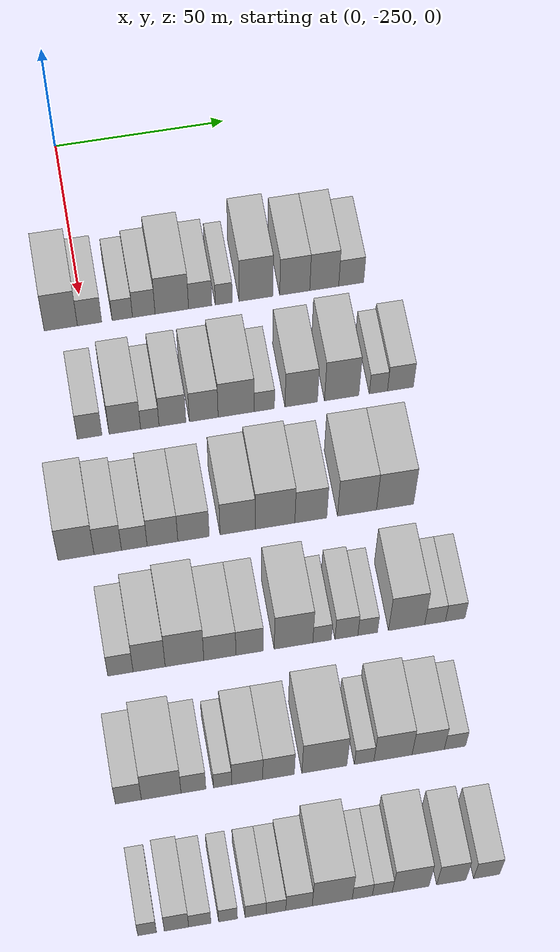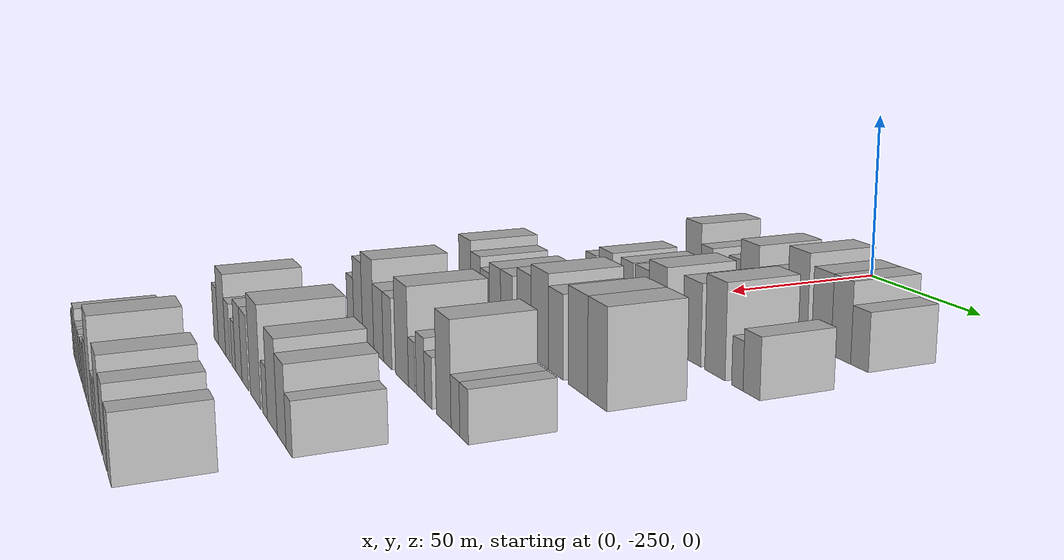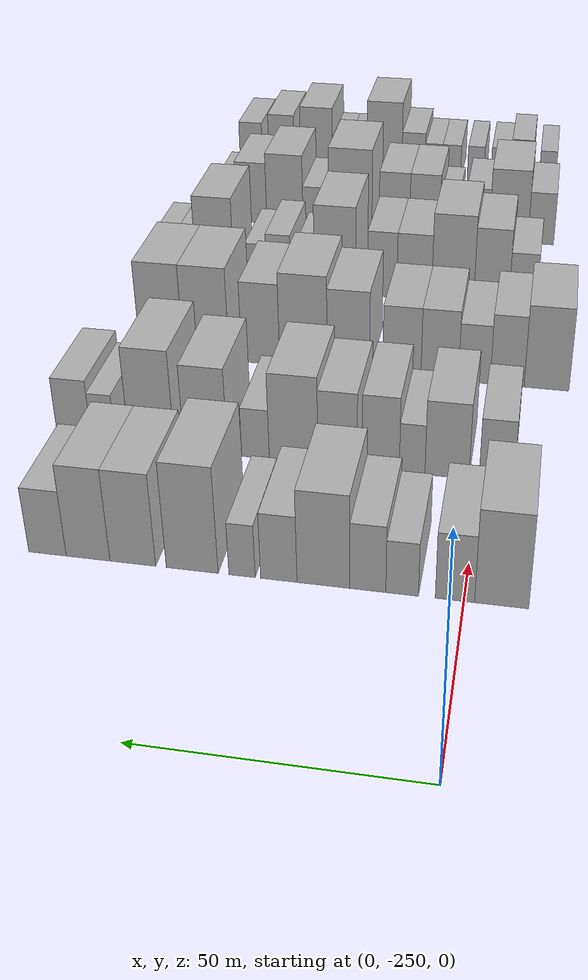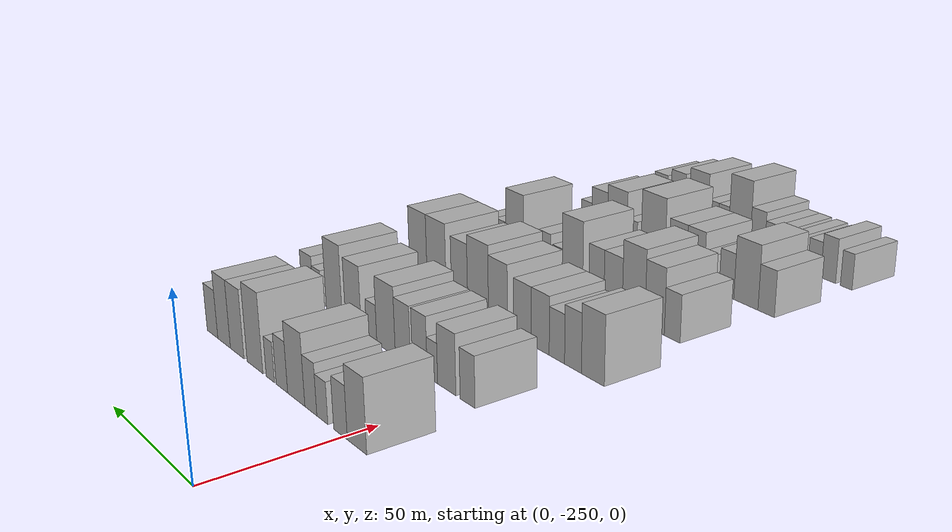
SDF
<sdf version="1.6">
 <world name="default">
  <model name="building_34">
   <static>1</static>
   <pose>50.0000 -256.5967 0 0.000000 0.000000 0.000000</pose>
   <link name="link">
    <pose>0 0 10.50 0 0 0</pose>
    <collision name="collision"><geometry><box><size>20.0000 9.5131 21.0000</size></box></geometry></collision>
    <visual name="visual">
     <cast_shadows>0</cast_shadows>
     <geometry><box><size>20.0000 9.5131 21.0000</size></box></geometry>
     <material>
      <script>
       <uri>model://HANNAS_wall/materials/scripts</uri>
       <uri>model://HANNAS_wall/materials/textures</uri>
       <name>vrc/HANNAS_wall</name>
      </script>
     </material>
    </visual>
   </link>
  </model>
  <model name="building_35">
   <static>1</static>
   <pose>50.0000 -248.3557 0 0.000000 0.000000 0.000000</pose>
   <link name="link">
    <pose>0 0 7.50 0 0 0</pose>
    <collision name="collision"><geometry><box><size>20.0000 6.9689 15.0000</size></box></geometry></collision>
    <visual name="visual">
     <cast_shadows>0</cast_shadows>
     <geometry><box><size>20.0000 6.9689 15.0000</size></box></geometry>
     <material>
      <script>
       <uri>model://HANNAS_wall/materials/scripts</uri>
       <uri>model://HANNAS_wall/materials/textures</uri>
       <name>vrc/HANNAS_wall</name>
      </script>
     </material>
    </visual>
   </link>
  </model>
  <model name="building_36">
   <static>1</static>
   <pose>50.0000 -238.9453 0 0.000000 0.000000 0.000000</pose>
   <link name="link">
    <pose>0 0 6.00 0 0 0</pose>
    <collision name="collision"><geometry><box><size>20.0000 5.8519 12.0000</size></box></geometry></collision>
    <visual name="visual">
     <cast_shadows>0</cast_shadows>
     <geometry><box><size>20.0000 5.8519 12.0000</size></box></geometry>
     <material>
      <script>
       <uri>model://HANNAS_wall/materials/scripts</uri>
       <uri>model://HANNAS_wall/materials/textures</uri>
       <name>vrc/HANNAS_wall</name>
      </script>
     </material>
    </visual>
   </link>
  </model>
  <model name="building_37">
   <static>1</static>
   <pose>50.0000 -232.7701 0 0.000000 0.000000 0.000000</pose>
   <link name="link">
    <pose>0 0 7.50 0 0 0</pose>
    <collision name="collision"><geometry><box><size>20.0000 6.4985 15.0000</size></box></geometry></collision>
    <visual name="visual">
     <cast_shadows>0</cast_shadows>
     <geometry><box><size>20.0000 6.4985 15.0000</size></box></geometry>
     <material>
      <script>
       <uri>model://HANNAS_wall/materials/scripts</uri>
       <uri>model://HANNAS_wall/materials/textures</uri>
       <name>vrc/HANNAS_wall</name>
      </script>
     </material>
    </visual>
   </link>
  </model>
  <model name="building_38">
   <static>1</static>
   <pose>50.0000 -224.6949 0 0.000000 0.000000 0.000000</pose>
   <link name="link">
    <pose>0 0 10.50 0 0 0</pose>
    <collision name="collision"><geometry><box><size>20.0000 9.6519 21.0000</size></box></geometry></collision>
    <visual name="visual">
     <cast_shadows>0</cast_shadows>
     <geometry><box><size>20.0000 9.6519 21.0000</size></box></geometry>
     <material>
      <script>
       <uri>model://HANNAS_wall/materials/scripts</uri>
       <uri>model://HANNAS_wall/materials/textures</uri>
       <name>vrc/HANNAS_wall</name>
      </script>
     </material>
    </visual>
   </link>
  </model>
  <model name="building_39">
   <static>1</static>
   <pose>50.0000 -216.5163 0 0.000000 0.000000 0.000000</pose>
   <link name="link">
    <pose>0 0 7.50 0 0 0</pose>
    <collision name="collision"><geometry><box><size>20.0000 6.7052 15.0000</size></box></geometry></collision>
    <visual name="visual">
     <cast_shadows>0</cast_shadows>
     <geometry><box><size>20.0000 6.7052 15.0000</size></box></geometry>
     <material>
      <script>
       <uri>model://HANNAS_wall/materials/scripts</uri>
       <uri>model://HANNAS_wall/materials/textures</uri>
       <name>vrc/HANNAS_wall</name>
      </script>
     </material>
    </visual>
   </link>
  </model>
  <model name="building_40">
   <static>1</static>
   <pose>50.0000 -209.7153 0 0.000000 0.000000 0.000000</pose>
   <link name="link">
    <pose>0 0 6.00 0 0 0</pose>
    <collision name="collision"><geometry><box><size>20.0000 4.8969 12.0000</size></box></geometry></collision>
    <visual name="visual">
     <cast_shadows>0</cast_shadows>
     <geometry><box><size>20.0000 4.8969 12.0000</size></box></geometry>
     <material>
      <script>
       <uri>model://HANNAS_wall/materials/scripts</uri>
       <uri>model://HANNAS_wall/materials/textures</uri>
       <name>vrc/HANNAS_wall</name>
      </script>
     </material>
    </visual>
   </link>
  </model>
  <model name="building_41">
   <static>1</static>
   <pose>50.0000 -200.3876 0 0.000000 0.000000 0.000000</pose>
   <link name="link">
    <pose>0 0 12.00 0 0 0</pose>
    <collision name="collision"><geometry><box><size>20.0000 9.7583 24.0000</size></box></geometry></collision>
    <visual name="visual">
     <cast_shadows>0</cast_shadows>
     <geometry><box><size>20.0000 9.7583 24.0000</size></box></geometry>
     <material>
      <script>
       <uri>model://HANNAS_wall/materials/scripts</uri>
       <uri>model://HANNAS_wall/materials/textures</uri>
       <name>vrc/HANNAS_wall</name>
      </script>
     </material>
    </visual>
   </link>
  </model>
  <model name="building_42">
   <static>1</static>
   <pose>50.0000 -189.1490 0 0.000000 0.000000 0.000000</pose>
   <link name="link">
    <pose>0 0 10.50 0 0 0</pose>
    <collision name="collision"><geometry><box><size>20.0000 8.7190 21.0000</size></box></geometry></collision>
    <visual name="visual">
     <cast_shadows>0</cast_shadows>
     <geometry><box><size>20.0000 8.7190 21.0000</size></box></geometry>
     <material>
      <script>
       <uri>model://HANNAS_wall/materials/scripts</uri>
       <uri>model://HANNAS_wall/materials/textures</uri>
       <name>vrc/HANNAS_wall</name>
      </script>
     </material>
    </visual>
   </link>
  </model>
  <model name="building_43">
   <static>1</static>
   <pose>50.0000 -180.5831 0 0.000000 0.000000 0.000000</pose>
   <link name="link">
    <pose>0 0 10.50 0 0 0</pose>
    <collision name="collision"><geometry><box><size>20.0000 8.4128 21.0000</size></box></geometry></collision>
    <visual name="visual">
     <cast_shadows>0</cast_shadows>
     <geometry><box><size>20.0000 8.4128 21.0000</size></box></geometry>
     <material>
      <script>
       <uri>model://HANNAS_wall/materials/scripts</uri>
       <uri>model://HANNAS_wall/materials/textures</uri>
       <name>vrc/HANNAS_wall</name>
      </script>
     </material>
    </visual>
   </link>
  </model>
  <model name="building_44">
   <static>1</static>
   <pose>50.0000 -172.7457 0 0.000000 0.000000 0.000000</pose>
   <link name="link">
    <pose>0 0 7.50 0 0 0</pose>
    <collision name="collision"><geometry><box><size>20.0000 7.2621 15.0000</size></box></geometry></collision>
    <visual name="visual">
     <cast_shadows>0</cast_shadows>
     <geometry><box><size>20.0000 7.2621 15.0000</size></box></geometry>
     <material>
      <script>
       <uri>model://HANNAS_wall/materials/scripts</uri>
       <uri>model://HANNAS_wall/materials/textures</uri>
       <name>vrc/HANNAS_wall</name>
      </script>
     </material>
    </visual>
   </link>
  </model>
  <model name="building_165">
   <static>1</static>
   <pose>85.0000 -253.3240 0 0.000000 0.000000 0.000000</pose>
   <link name="link">
    <pose>0 0 7.50 0 0 0</pose>
    <collision name="collision"><geometry><box><size>20.0000 6.9586 15.0000</size></box></geometry></collision>
    <visual name="visual">
     <cast_shadows>0</cast_shadows>
     <geometry><box><size>20.0000 6.9586 15.0000</size></box></geometry>
     <material>
      <script>
       <uri>model://HANNAS_wall/materials/scripts</uri>
       <uri>model://HANNAS_wall/materials/textures</uri>
       <name>vrc/HANNAS_wall</name>
      </script>
     </material>
    </visual>
   </link>
  </model>
  <model name="building_166">
   <static>1</static>
   <pose>85.0000 -243.4101 0 0.000000 0.000000 0.000000</pose>
   <link name="link">
    <pose>0 0 9.00 0 0 0</pose>
    <collision name="collision"><geometry><box><size>20.0000 8.8692 18.0000</size></box></geometry></collision>
    <visual name="visual">
     <cast_shadows>0</cast_shadows>
     <geometry><box><size>20.0000 8.8692 18.0000</size></box></geometry>
     <material>
      <script>
       <uri>model://HANNAS_wall/materials/scripts</uri>
       <uri>model://HANNAS_wall/materials/textures</uri>
       <name>vrc/HANNAS_wall</name>
      </script>
     </material>
    </visual>
   </link>
  </model>
  <model name="building_167">
   <static>1</static>
   <pose>85.0000 -236.3796 0 0.000000 0.000000 0.000000</pose>
   <link name="link">
    <pose>0 0 6.00 0 0 0</pose>
    <collision name="collision"><geometry><box><size>20.0000 5.1918 12.0000</size></box></geometry></collision>
    <visual name="visual">
     <cast_shadows>0</cast_shadows>
     <geometry><box><size>20.0000 5.1918 12.0000</size></box></geometry>
     <material>
      <script>
       <uri>model://HANNAS_wall/materials/scripts</uri>
       <uri>model://HANNAS_wall/materials/textures</uri>
       <name>vrc/HANNAS_wall</name>
      </script>
     </material>
    </visual>
   </link>
  </model>
  <model name="building_168">
   <static>1</static>
   <pose>85.0000 -230.0042 0 0.000000 0.000000 0.000000</pose>
   <link name="link">
    <pose>0 0 9.00 0 0 0</pose>
    <collision name="collision"><geometry><box><size>20.0000 7.5591 18.0000</size></box></geometry></collision>
    <visual name="visual">
     <cast_shadows>0</cast_shadows>
     <geometry><box><size>20.0000 7.5591 18.0000</size></box></geometry>
     <material>
      <script>
       <uri>model://HANNAS_wall/materials/scripts</uri>
       <uri>model://HANNAS_wall/materials/textures</uri>
       <name>vrc/HANNAS_wall</name>
      </script>
     </material>
    </visual>
   </link>
  </model>
  <model name="building_169">
   <static>1</static>
   <pose>85.0000 -221.1715 0 0.000000 0.000000 0.000000</pose>
   <link name="link">
    <pose>0 0 9.00 0 0 0</pose>
    <collision name="collision"><geometry><box><size>20.0000 8.1064 18.0000</size></box></geometry></collision>
    <visual name="visual">
     <cast_shadows>0</cast_shadows>
     <geometry><box><size>20.0000 8.1064 18.0000</size></box></geometry>
     <material>
      <script>
       <uri>model://HANNAS_wall/materials/scripts</uri>
       <uri>model://HANNAS_wall/materials/textures</uri>
       <name>vrc/HANNAS_wall</name>
      </script>
     </material>
    </visual>
   </link>
  </model>
  <model name="building_170">
   <static>1</static>
   <pose>85.0000 -212.0409 0 0.000000 0.000000 0.000000</pose>
   <link name="link">
    <pose>0 0 10.50 0 0 0</pose>
    <collision name="collision"><geometry><box><size>20.0000 10.1546 21.0000</size></box></geometry></collision>
    <visual name="visual">
     <cast_shadows>0</cast_shadows>
     <geometry><box><size>20.0000 10.1546 21.0000</size></box></geometry>
     <material>
      <script>
       <uri>model://HANNAS_wall/materials/scripts</uri>
       <uri>model://HANNAS_wall/materials/textures</uri>
       <name>vrc/HANNAS_wall</name>
      </script>
     </material>
    </visual>
   </link>
  </model>
  <model name="building_171">
   <static>1</static>
   <pose>85.0000 -204.0703 0 0.000000 0.000000 0.000000</pose>
   <link name="link">
    <pose>0 0 6.00 0 0 0</pose>
    <collision name="collision"><geometry><box><size>20.0000 5.7868 12.0000</size></box></geometry></collision>
    <visual name="visual">
     <cast_shadows>0</cast_shadows>
     <geometry><box><size>20.0000 5.7868 12.0000</size></box></geometry>
     <material>
      <script>
       <uri>model://HANNAS_wall/materials/scripts</uri>
       <uri>model://HANNAS_wall/materials/textures</uri>
       <name>vrc/HANNAS_wall</name>
      </script>
     </material>
    </visual>
   </link>
  </model>
  <model name="building_172">
   <static>1</static>
   <pose>85.0000 -193.5579 0 0.000000 0.000000 0.000000</pose>
   <link name="link">
    <pose>0 0 10.50 0 0 0</pose>
    <collision name="collision"><geometry><box><size>20.0000 9.2380 21.0000</size></box></geometry></collision>
    <visual name="visual">
     <cast_shadows>0</cast_shadows>
     <geometry><box><size>20.0000 9.2380 21.0000</size></box></geometry>
     <material>
      <script>
       <uri>model://HANNAS_wall/materials/scripts</uri>
       <uri>model://HANNAS_wall/materials/textures</uri>
       <name>vrc/HANNAS_wall</name>
      </script>
     </material>
    </visual>
   </link>
  </model>
  <model name="building_173">
   <static>1</static>
   <pose>85.0000 -182.0519 0 0.000000 0.000000 0.000000</pose>
   <link name="link">
    <pose>0 0 12.00 0 0 0</pose>
    <collision name="collision"><geometry><box><size>20.0000 9.7738 24.0000</size></box></geometry></collision>
    <visual name="visual">
     <cast_shadows>0</cast_shadows>
     <geometry><box><size>20.0000 9.7738 24.0000</size></box></geometry>
     <material>
      <script>
       <uri>model://HANNAS_wall/materials/scripts</uri>
       <uri>model://HANNAS_wall/materials/textures</uri>
       <name>vrc/HANNAS_wall</name>
      </script>
     </material>
    </visual>
   </link>
  </model>
  <model name="building_174">
   <static>1</static>
   <pose>85.0000 -171.5740 0 0.000000 0.000000 0.000000</pose>
   <link name="link">
    <pose>0 0 6.00 0 0 0</pose>
    <collision name="collision"><geometry><box><size>20.0000 5.1820 12.0000</size></box></geometry></collision>
    <visual name="visual">
     <cast_shadows>0</cast_shadows>
     <geometry><box><size>20.0000 5.1820 12.0000</size></box></geometry>
     <material>
      <script>
       <uri>model://HANNAS_wall/materials/scripts</uri>
       <uri>model://HANNAS_wall/materials/textures</uri>
       <name>vrc/HANNAS_wall</name>
      </script>
     </material>
    </visual>
   </link>
  </model>
  <model name="building_175">
   <static>1</static>
   <pose>85.0000 -165.2852 0 0.000000 0.000000 0.000000</pose>
   <link name="link">
    <pose>0 0 7.50 0 0 0</pose>
    <collision name="collision"><geometry><box><size>20.0000 7.3956 15.0000</size></box></geometry></collision>
    <visual name="visual">
     <cast_shadows>0</cast_shadows>
     <geometry><box><size>20.0000 7.3956 15.0000</size></box></geometry>
     <material>
      <script>
       <uri>model://HANNAS_wall/materials/scripts</uri>
       <uri>model://HANNAS_wall/materials/textures</uri>
       <name>vrc/HANNAS_wall</name>
      </script>
     </material>
    </visual>
   </link>
  </model>
  <model name="building_291">
   <static>1</static>
   <pose>120.0000 -262.0202 0 0.000000 0.000000 0.000000</pose>
   <link name="link">
    <pose>0 0 10.50 0 0 0</pose>
    <collision name="collision"><geometry><box><size>20.0000 9.8946 21.0000</size></box></geometry></collision>
    <visual name="visual">
     <cast_shadows>0</cast_shadows>
     <geometry><box><size>20.0000 9.8946 21.0000</size></box></geometry>
     <material>
      <script>
       <uri>model://HANNAS_wall/materials/scripts</uri>
       <uri>model://HANNAS_wall/materials/textures</uri>
       <name>vrc/HANNAS_wall</name>
      </script>
     </material>
    </visual>
   </link>
  </model>
  <model name="building_292">
   <static>1</static>
   <pose>120.0000 -253.3083 0 0.000000 0.000000 0.000000</pose>
   <link name="link">
    <pose>0 0 9.00 0 0 0</pose>
    <collision name="collision"><geometry><box><size>20.0000 7.5290 18.0000</size></box></geometry></collision>
    <visual name="visual">
     <cast_shadows>0</cast_shadows>
     <geometry><box><size>20.0000 7.5290 18.0000</size></box></geometry>
     <material>
      <script>
       <uri>model://HANNAS_wall/materials/scripts</uri>
       <uri>model://HANNAS_wall/materials/textures</uri>
       <name>vrc/HANNAS_wall</name>
      </script>
     </material>
    </visual>
   </link>
  </model>
  <model name="building_293">
   <static>1</static>
   <pose>120.0000 -246.0073 0 0.000000 0.000000 0.000000</pose>
   <link name="link">
    <pose>0 0 7.50 0 0 0</pose>
    <collision name="collision"><geometry><box><size>20.0000 7.0731 15.0000</size></box></geometry></collision>
    <visual name="visual">
     <cast_shadows>0</cast_shadows>
     <geometry><box><size>20.0000 7.0731 15.0000</size></box></geometry>
     <material>
      <script>
       <uri>model://HANNAS_wall/materials/scripts</uri>
       <uri>model://HANNAS_wall/materials/textures</uri>
       <name>vrc/HANNAS_wall</name>
      </script>
     </material>
    </visual>
   </link>
  </model>
  <model name="building_294">
   <static>1</static>
   <pose>120.0000 -238.2392 0 0.000000 0.000000 0.000000</pose>
   <link name="link">
    <pose>0 0 9.00 0 0 0</pose>
    <collision name="collision"><geometry><box><size>20.0000 8.4631 18.0000</size></box></geometry></collision>
    <visual name="visual">
     <cast_shadows>0</cast_shadows>
     <geometry><box><size>20.0000 8.4631 18.0000</size></box></geometry>
     <material>
      <script>
       <uri>model://HANNAS_wall/materials/scripts</uri>
       <uri>model://HANNAS_wall/materials/textures</uri>
       <name>vrc/HANNAS_wall</name>
      </script>
     </material>
    </visual>
   </link>
  </model>
  <model name="building_295">
   <static>1</static>
   <pose>120.0000 -229.6831 0 0.000000 0.000000 0.000000</pose>
   <link name="link">
    <pose>0 0 9.00 0 0 0</pose>
    <collision name="collision"><geometry><box><size>20.0000 8.6493 18.0000</size></box></geometry></collision>
    <visual name="visual">
     <cast_shadows>0</cast_shadows>
     <geometry><box><size>20.0000 8.6493 18.0000</size></box></geometry>
     <material>
      <script>
       <uri>model://HANNAS_wall/materials/scripts</uri>
       <uri>model://HANNAS_wall/materials/textures</uri>
       <name>vrc/HANNAS_wall</name>
      </script>
     </material>
    </visual>
   </link>
  </model>
  <model name="building_296">
   <static>1</static>
   <pose>120.0000 -217.5014 0 0.000000 0.000000 0.000000</pose>
   <link name="link">
    <pose>0 0 10.50 0 0 0</pose>
    <collision name="collision"><geometry><box><size>20.0000 9.7141 21.0000</size></box></geometry></collision>
    <visual name="visual">
     <cast_shadows>0</cast_shadows>
     <geometry><box><size>20.0000 9.7141 21.0000</size></box></geometry>
     <material>
      <script>
       <uri>model://HANNAS_wall/materials/scripts</uri>
       <uri>model://HANNAS_wall/materials/textures</uri>
       <name>vrc/HANNAS_wall</name>
      </script>
     </material>
    </visual>
   </link>
  </model>
  <model name="building_297">
   <static>1</static>
   <pose>120.0000 -207.1283 0 0.000000 0.000000 0.000000</pose>
   <link name="link">
    <pose>0 0 12.00 0 0 0</pose>
    <collision name="collision"><geometry><box><size>20.0000 11.0322 24.0000</size></box></geometry></collision>
    <visual name="visual">
     <cast_shadows>0</cast_shadows>
     <geometry><box><size>20.0000 11.0322 24.0000</size></box></geometry>
     <material>
      <script>
       <uri>model://HANNAS_wall/materials/scripts</uri>
       <uri>model://HANNAS_wall/materials/textures</uri>
       <name>vrc/HANNAS_wall</name>
      </script>
     </material>
    </visual>
   </link>
  </model>
  <model name="building_298">
   <static>1</static>
   <pose>120.0000 -197.1749 0 0.000000 0.000000 0.000000</pose>
   <link name="link">
    <pose>0 0 10.50 0 0 0</pose>
    <collision name="collision"><geometry><box><size>20.0000 8.8746 21.0000</size></box></geometry></collision>
    <visual name="visual">
     <cast_shadows>0</cast_shadows>
     <geometry><box><size>20.0000 8.8746 21.0000</size></box></geometry>
     <material>
      <script>
       <uri>model://HANNAS_wall/materials/scripts</uri>
       <uri>model://HANNAS_wall/materials/textures</uri>
       <name>vrc/HANNAS_wall</name>
      </script>
     </material>
    </visual>
   </link>
  </model>
  <model name="building_299">
   <static>1</static>
   <pose>120.0000 -184.3029 0 0.000000 0.000000 0.000000</pose>
   <link name="link">
    <pose>0 0 12.00 0 0 0</pose>
    <collision name="collision"><geometry><box><size>20.0000 10.8693 24.0000</size></box></geometry></collision>
    <visual name="visual">
     <cast_shadows>0</cast_shadows>
     <geometry><box><size>20.0000 10.8693 24.0000</size></box></geometry>
     <material>
      <script>
       <uri>model://HANNAS_wall/materials/scripts</uri>
       <uri>model://HANNAS_wall/materials/textures</uri>
       <name>vrc/HANNAS_wall</name>
      </script>
     </material>
    </visual>
   </link>
  </model>
  <model name="building_300">
   <static>1</static>
   <pose>120.0000 -173.6864 0 0.000000 0.000000 0.000000</pose>
   <link name="link">
    <pose>0 0 12.00 0 0 0</pose>
    <collision name="collision"><geometry><box><size>20.0000 10.3636 24.0000</size></box></geometry></collision>
    <visual name="visual">
     <cast_shadows>0</cast_shadows>
     <geometry><box><size>20.0000 10.3636 24.0000</size></box></geometry>
     <material>
      <script>
       <uri>model://HANNAS_wall/materials/scripts</uri>
       <uri>model://HANNAS_wall/materials/textures</uri>
       <name>vrc/HANNAS_wall</name>
      </script>
     </material>
    </visual>
   </link>
  </model>
  <model name="building_418">
   <static>1</static>
   <pose>155.0000 -254.9989 0 0.000000 0.000000 0.000000</pose>
   <link name="link">
    <pose>0 0 7.50 0 0 0</pose>
    <collision name="collision"><geometry><box><size>20.0000 6.8194 15.0000</size></box></geometry></collision>
    <visual name="visual">
     <cast_shadows>0</cast_shadows>
     <geometry><box><size>20.0000 6.8194 15.0000</size></box></geometry>
     <material>
      <script>
       <uri>model://HANNAS_wall/materials/scripts</uri>
       <uri>model://HANNAS_wall/materials/textures</uri>
       <name>vrc/HANNAS_wall</name>
      </script>
     </material>
    </visual>
   </link>
  </model>
  <model name="building_419">
   <static>1</static>
   <pose>155.0000 -247.2697 0 0.000000 0.000000 0.000000</pose>
   <link name="link">
    <pose>0 0 10.50 0 0 0</pose>
    <collision name="collision"><geometry><box><size>20.0000 8.6390 21.0000</size></box></geometry></collision>
    <visual name="visual">
     <cast_shadows>0</cast_shadows>
     <geometry><box><size>20.0000 8.6390 21.0000</size></box></geometry>
     <material>
      <script>
       <uri>model://HANNAS_wall/materials/scripts</uri>
       <uri>model://HANNAS_wall/materials/textures</uri>
       <name>vrc/HANNAS_wall</name>
      </script>
     </material>
    </visual>
   </link>
  </model>
  <model name="building_420">
   <static>1</static>
   <pose>155.0000 -237.7359 0 0.000000 0.000000 0.000000</pose>
   <link name="link">
    <pose>0 0 12.00 0 0 0</pose>
    <collision name="collision"><geometry><box><size>20.0000 10.4285 24.0000</size></box></geometry></collision>
    <visual name="visual">
     <cast_shadows>0</cast_shadows>
     <geometry><box><size>20.0000 10.4285 24.0000</size></box></geometry>
     <material>
      <script>
       <uri>model://HANNAS_wall/materials/scripts</uri>
       <uri>model://HANNAS_wall/materials/textures</uri>
       <name>vrc/HANNAS_wall</name>
      </script>
     </material>
    </visual>
   </link>
  </model>
  <model name="building_421">
   <static>1</static>
   <pose>155.0000 -228.1884 0 0.000000 0.000000 0.000000</pose>
   <link name="link">
    <pose>0 0 9.00 0 0 0</pose>
    <collision name="collision"><geometry><box><size>20.0000 8.6666 18.0000</size></box></geometry></collision>
    <visual name="visual">
     <cast_shadows>0</cast_shadows>
     <geometry><box><size>20.0000 8.6666 18.0000</size></box></geometry>
     <material>
      <script>
       <uri>model://HANNAS_wall/materials/scripts</uri>
       <uri>model://HANNAS_wall/materials/textures</uri>
       <name>vrc/HANNAS_wall</name>
      </script>
     </material>
    </visual>
   </link>
  </model>
  <model name="building_422">
   <static>1</static>
   <pose>155.0000 -220.1640 0 0.000000 0.000000 0.000000</pose>
   <link name="link">
    <pose>0 0 9.00 0 0 0</pose>
    <collision name="collision"><geometry><box><size>20.0000 7.3821 18.0000</size></box></geometry></collision>
    <visual name="visual">
     <cast_shadows>0</cast_shadows>
     <geometry><box><size>20.0000 7.3821 18.0000</size></box></geometry>
     <material>
      <script>
       <uri>model://HANNAS_wall/materials/scripts</uri>
       <uri>model://HANNAS_wall/materials/textures</uri>
       <name>vrc/HANNAS_wall</name>
      </script>
     </material>
    </visual>
   </link>
  </model>
  <model name="building_423">
   <static>1</static>
   <pose>155.0000 -208.2248 0 0.000000 0.000000 0.000000</pose>
   <link name="link">
    <pose>0 0 12.00 0 0 0</pose>
    <collision name="collision"><geometry><box><size>20.0000 10.4962 24.0000</size></box></geometry></collision>
    <visual name="visual">
     <cast_shadows>0</cast_shadows>
     <geometry><box><size>20.0000 10.4962 24.0000</size></box></geometry>
     <material>
      <script>
       <uri>model://HANNAS_wall/materials/scripts</uri>
       <uri>model://HANNAS_wall/materials/textures</uri>
       <name>vrc/HANNAS_wall</name>
      </script>
     </material>
    </visual>
   </link>
  </model>
  <model name="building_424">
   <static>1</static>
   <pose>155.0000 -200.4634 0 0.000000 0.000000 0.000000</pose>
   <link name="link">
    <pose>0 0 6.00 0 0 0</pose>
    <collision name="collision"><geometry><box><size>20.0000 5.0266 12.0000</size></box></geometry></collision>
    <visual name="visual">
     <cast_shadows>0</cast_shadows>
     <geometry><box><size>20.0000 5.0266 12.0000</size></box></geometry>
     <material>
      <script>
       <uri>model://HANNAS_wall/materials/scripts</uri>
       <uri>model://HANNAS_wall/materials/textures</uri>
       <name>vrc/HANNAS_wall</name>
      </script>
     </material>
    </visual>
   </link>
  </model>
  <model name="building_425">
   <static>1</static>
   <pose>155.0000 -193.8229 0 0.000000 0.000000 0.000000</pose>
   <link name="link">
    <pose>0 0 7.50 0 0 0</pose>
    <collision name="collision"><geometry><box><size>20.0000 6.2543 15.0000</size></box></geometry></collision>
    <visual name="visual">
     <cast_shadows>0</cast_shadows>
     <geometry><box><size>20.0000 6.2543 15.0000</size></box></geometry>
     <material>
      <script>
       <uri>model://HANNAS_wall/materials/scripts</uri>
       <uri>model://HANNAS_wall/materials/textures</uri>
       <name>vrc/HANNAS_wall</name>
      </script>
     </material>
    </visual>
   </link>
  </model>
  <model name="building_426">
   <static>1</static>
   <pose>155.0000 -188.0144 0 0.000000 0.000000 0.000000</pose>
   <link name="link">
    <pose>0 0 6.00 0 0 0</pose>
    <collision name="collision"><geometry><box><size>20.0000 5.3628 12.0000</size></box></geometry></collision>
    <visual name="visual">
     <cast_shadows>0</cast_shadows>
     <geometry><box><size>20.0000 5.3628 12.0000</size></box></geometry>
     <material>
      <script>
       <uri>model://HANNAS_wall/materials/scripts</uri>
       <uri>model://HANNAS_wall/materials/textures</uri>
       <name>vrc/HANNAS_wall</name>
      </script>
     </material>
    </visual>
   </link>
  </model>
  <model name="building_427">
   <static>1</static>
   <pose>155.0000 -177.3734 0 0.000000 0.000000 0.000000</pose>
   <link name="link">
    <pose>0 0 12.00 0 0 0</pose>
    <collision name="collision"><geometry><box><size>20.0000 9.9193 24.0000</size></box></geometry></collision>
    <visual name="visual">
     <cast_shadows>0</cast_shadows>
     <geometry><box><size>20.0000 9.9193 24.0000</size></box></geometry>
     <material>
      <script>
       <uri>model://HANNAS_wall/materials/scripts</uri>
       <uri>model://HANNAS_wall/materials/textures</uri>
       <name>vrc/HANNAS_wall</name>
      </script>
     </material>
    </visual>
   </link>
  </model>
  <model name="building_428">
   <static>1</static>
   <pose>155.0000 -169.5860 0 0.000000 0.000000 0.000000</pose>
   <link name="link">
    <pose>0 0 6.00 0 0 0</pose>
    <collision name="collision"><geometry><box><size>20.0000 5.6554 12.0000</size></box></geometry></collision>
    <visual name="visual">
     <cast_shadows>0</cast_shadows>
     <geometry><box><size>20.0000 5.6554 12.0000</size></box></geometry>
     <material>
      <script>
       <uri>model://HANNAS_wall/materials/scripts</uri>
       <uri>model://HANNAS_wall/materials/textures</uri>
       <name>vrc/HANNAS_wall</name>
      </script>
     </material>
    </visual>
   </link>
  </model>
  <model name="building_429">
   <static>1</static>
   <pose>155.0000 -164.0809 0 0.000000 0.000000 0.000000</pose>
   <link name="link">
    <pose>0 0 6.00 0 0 0</pose>
    <collision name="collision"><geometry><box><size>20.0000 5.3549 12.0000</size></box></geometry></collision>
    <visual name="visual">
     <cast_shadows>0</cast_shadows>
     <geometry><box><size>20.0000 5.3549 12.0000</size></box></geometry>
     <material>
      <script>
       <uri>model://HANNAS_wall/materials/scripts</uri>
       <uri>model://HANNAS_wall/materials/textures</uri>
       <name>vrc/HANNAS_wall</name>
      </script>
     </material>
    </visual>
   </link>
  </model>
  <model name="building_538">
   <static>1</static>
   <pose>190.0000 -258.0858 0 0.000000 0.000000 0.000000</pose>
   <link name="link">
    <pose>0 0 7.50 0 0 0</pose>
    <collision name="collision"><geometry><box><size>20.0000 6.8707 15.0000</size></box></geometry></collision>
    <visual name="visual">
     <cast_shadows>0</cast_shadows>
     <geometry><box><size>20.0000 6.8707 15.0000</size></box></geometry>
     <material>
      <script>
       <uri>model://HANNAS_wall/materials/scripts</uri>
       <uri>model://HANNAS_wall/materials/textures</uri>
       <name>vrc/HANNAS_wall</name>
      </script>
     </material>
    </visual>
   </link>
  </model>
  <model name="building_539">
   <static>1</static>
   <pose>190.0000 -249.4347 0 0.000000 0.000000 0.000000</pose>
   <link name="link">
    <pose>0 0 10.50 0 0 0</pose>
    <collision name="collision"><geometry><box><size>20.0000 10.4314 21.0000</size></box></geometry></collision>
    <visual name="visual">
     <cast_shadows>0</cast_shadows>
     <geometry><box><size>20.0000 10.4314 21.0000</size></box></geometry>
     <material>
      <script>
       <uri>model://HANNAS_wall/materials/scripts</uri>
       <uri>model://HANNAS_wall/materials/textures</uri>
       <name>vrc/HANNAS_wall</name>
      </script>
     </material>
    </visual>
   </link>
  </model>
  <model name="building_540">
   <static>1</static>
   <pose>190.0000 -240.9400 0 0.000000 0.000000 0.000000</pose>
   <link name="link">
    <pose>0 0 7.50 0 0 0</pose>
    <collision name="collision"><geometry><box><size>20.0000 6.5581 15.0000</size></box></geometry></collision>
    <visual name="visual">
     <cast_shadows>0</cast_shadows>
     <geometry><box><size>20.0000 6.5581 15.0000</size></box></geometry>
     <material>
      <script>
       <uri>model://HANNAS_wall/materials/scripts</uri>
       <uri>model://HANNAS_wall/materials/textures</uri>
       <name>vrc/HANNAS_wall</name>
      </script>
     </material>
    </visual>
   </link>
  </model>
  <model name="building_541">
   <static>1</static>
   <pose>190.0000 -233.2447 0 0.000000 0.000000 0.000000</pose>
   <link name="link">
    <pose>0 0 6.00 0 0 0</pose>
    <collision name="collision"><geometry><box><size>20.0000 4.8326 12.0000</size></box></geometry></collision>
    <visual name="visual">
     <cast_shadows>0</cast_shadows>
     <geometry><box><size>20.0000 4.8326 12.0000</size></box></geometry>
     <material>
      <script>
       <uri>model://HANNAS_wall/materials/scripts</uri>
       <uri>model://HANNAS_wall/materials/textures</uri>
       <name>vrc/HANNAS_wall</name>
      </script>
     </material>
    </visual>
   </link>
  </model>
  <model name="building_542">
   <static>1</static>
   <pose>190.0000 -226.7171 0 0.000000 0.000000 0.000000</pose>
   <link name="link">
    <pose>0 0 9.00 0 0 0</pose>
    <collision name="collision"><geometry><box><size>20.0000 8.2227 18.0000</size></box></geometry></collision>
    <visual name="visual">
     <cast_shadows>0</cast_shadows>
     <geometry><box><size>20.0000 8.2227 18.0000</size></box></geometry>
     <material>
      <script>
       <uri>model://HANNAS_wall/materials/scripts</uri>
       <uri>model://HANNAS_wall/materials/textures</uri>
       <name>vrc/HANNAS_wall</name>
      </script>
     </material>
    </visual>
   </link>
  </model>
  <model name="building_543">
   <static>1</static>
   <pose>190.0000 -218.4236 0 0.000000 0.000000 0.000000</pose>
   <link name="link">
    <pose>0 0 9.00 0 0 0</pose>
    <collision name="collision"><geometry><box><size>20.0000 8.3642 18.0000</size></box></geometry></collision>
    <visual name="visual">
     <cast_shadows>0</cast_shadows>
     <geometry><box><size>20.0000 8.3642 18.0000</size></box></geometry>
     <material>
      <script>
       <uri>model://HANNAS_wall/materials/scripts</uri>
       <uri>model://HANNAS_wall/materials/textures</uri>
       <name>vrc/HANNAS_wall</name>
      </script>
     </material>
    </visual>
   </link>
  </model>
  <model name="building_544">
   <static>1</static>
   <pose>190.0000 -206.2589 0 0.000000 0.000000 0.000000</pose>
   <link name="link">
    <pose>0 0 12.00 0 0 0</pose>
    <collision name="collision"><geometry><box><size>20.0000 11.9652 24.0000</size></box></geometry></collision>
    <visual name="visual">
     <cast_shadows>0</cast_shadows>
     <geometry><box><size>20.0000 11.9652 24.0000</size></box></geometry>
     <material>
      <script>
       <uri>model://HANNAS_wall/materials/scripts</uri>
       <uri>model://HANNAS_wall/materials/textures</uri>
       <name>vrc/HANNAS_wall</name>
      </script>
     </material>
    </visual>
   </link>
  </model>
  <model name="building_545">
   <static>1</static>
   <pose>190.0000 -195.6631 0 0.000000 0.000000 0.000000</pose>
   <link name="link">
    <pose>0 0 6.00 0 0 0</pose>
    <collision name="collision"><geometry><box><size>20.0000 5.2263 12.0000</size></box></geometry></collision>
    <visual name="visual">
     <cast_shadows>0</cast_shadows>
     <geometry><box><size>20.0000 5.2263 12.0000</size></box></geometry>
     <material>
      <script>
       <uri>model://HANNAS_wall/materials/scripts</uri>
       <uri>model://HANNAS_wall/materials/textures</uri>
       <name>vrc/HANNAS_wall</name>
      </script>
     </material>
    </visual>
   </link>
  </model>
  <model name="building_546">
   <static>1</static>
   <pose>190.0000 -187.9556 0 0.000000 0.000000 0.000000</pose>
   <link name="link">
    <pose>0 0 10.50 0 0 0</pose>
    <collision name="collision"><geometry><box><size>20.0000 10.1887 21.0000</size></box></geometry></collision>
    <visual name="visual">
     <cast_shadows>0</cast_shadows>
     <geometry><box><size>20.0000 10.1887 21.0000</size></box></geometry>
     <material>
      <script>
       <uri>model://HANNAS_wall/materials/scripts</uri>
       <uri>model://HANNAS_wall/materials/textures</uri>
       <name>vrc/HANNAS_wall</name>
      </script>
     </material>
    </visual>
   </link>
  </model>
  <model name="building_547">
   <static>1</static>
   <pose>190.0000 -178.5464 0 0.000000 0.000000 0.000000</pose>
   <link name="link">
    <pose>0 0 9.00 0 0 0</pose>
    <collision name="collision"><geometry><box><size>20.0000 8.6298 18.0000</size></box></geometry></collision>
    <visual name="visual">
     <cast_shadows>0</cast_shadows>
     <geometry><box><size>20.0000 8.6298 18.0000</size></box></geometry>
     <material>
      <script>
       <uri>model://HANNAS_wall/materials/scripts</uri>
       <uri>model://HANNAS_wall/materials/textures</uri>
       <name>vrc/HANNAS_wall</name>
      </script>
     </material>
    </visual>
   </link>
  </model>
  <model name="building_548">
   <static>1</static>
   <pose>190.0000 -171.3836 0 0.000000 0.000000 0.000000</pose>
   <link name="link">
    <pose>0 0 6.00 0 0 0</pose>
    <collision name="collision"><geometry><box><size>20.0000 5.6957 12.0000</size></box></geometry></collision>
    <visual name="visual">
     <cast_shadows>0</cast_shadows>
     <geometry><box><size>20.0000 5.6957 12.0000</size></box></geometry>
     <material>
      <script>
       <uri>model://HANNAS_wall/materials/scripts</uri>
       <uri>model://HANNAS_wall/materials/textures</uri>
       <name>vrc/HANNAS_wall</name>
      </script>
     </material>
    </visual>
   </link>
  </model>
  <model name="building_665">
   <static>1</static>
   <pose>225.0000 -258.4731 0 0.000000 0.000000 0.000000</pose>
   <link name="link">
    <pose>0 0 6.00 0 0 0</pose>
    <collision name="collision"><geometry><box><size>20.0000 4.8039 12.0000</size></box></geometry></collision>
    <visual name="visual">
     <cast_shadows>0</cast_shadows>
     <geometry><box><size>20.0000 4.8039 12.0000</size></box></geometry>
     <material>
      <script>
       <uri>model://HANNAS_wall/materials/scripts</uri>
       <uri>model://HANNAS_wall/materials/textures</uri>
       <name>vrc/HANNAS_wall</name>
      </script>
     </material>
    </visual>
   </link>
  </model>
  <model name="building_666">
   <static>1</static>
   <pose>225.0000 -250.9240 0 0.000000 0.000000 0.000000</pose>
   <link name="link">
    <pose>0 0 7.50 0 0 0</pose>
    <collision name="collision"><geometry><box><size>20.0000 6.2941 15.0000</size></box></geometry></collision>
    <visual name="visual">
     <cast_shadows>0</cast_shadows>
     <geometry><box><size>20.0000 6.2941 15.0000</size></box></geometry>
     <material>
      <script>
       <uri>model://HANNAS_wall/materials/scripts</uri>
       <uri>model://HANNAS_wall/materials/textures</uri>
       <name>vrc/HANNAS_wall</name>
      </script>
     </material>
    </visual>
   </link>
  </model>
  <model name="building_667">
   <static>1</static>
   <pose>225.0000 -244.9197 0 0.000000 0.000000 0.000000</pose>
   <link name="link">
    <pose>0 0 6.00 0 0 0</pose>
    <collision name="collision"><geometry><box><size>20.0000 5.7145 12.0000</size></box></geometry></collision>
    <visual name="visual">
     <cast_shadows>0</cast_shadows>
     <geometry><box><size>20.0000 5.7145 12.0000</size></box></geometry>
     <material>
      <script>
       <uri>model://HANNAS_wall/materials/scripts</uri>
       <uri>model://HANNAS_wall/materials/textures</uri>
       <name>vrc/HANNAS_wall</name>
      </script>
     </material>
    </visual>
   </link>
  </model>
  <model name="building_668">
   <static>1</static>
   <pose>225.0000 -237.6407 0 0.000000 0.000000 0.000000</pose>
   <link name="link">
    <pose>0 0 6.00 0 0 0</pose>
    <collision name="collision"><geometry><box><size>20.0000 4.8435 12.0000</size></box></geometry></collision>
    <visual name="visual">
     <cast_shadows>0</cast_shadows>
     <geometry><box><size>20.0000 4.8435 12.0000</size></box></geometry>
     <material>
      <script>
       <uri>model://HANNAS_wall/materials/scripts</uri>
       <uri>model://HANNAS_wall/materials/textures</uri>
       <name>vrc/HANNAS_wall</name>
      </script>
     </material>
    </visual>
   </link>
  </model>
  <model name="building_669">
   <static>1</static>
   <pose>225.0000 -230.5047 0 0.000000 0.000000 0.000000</pose>
   <link name="link">
    <pose>0 0 6.00 0 0 0</pose>
    <collision name="collision"><geometry><box><size>20.0000 5.4285 12.0000</size></box></geometry></collision>
    <visual name="visual">
     <cast_shadows>0</cast_shadows>
     <geometry><box><size>20.0000 5.4285 12.0000</size></box></geometry>
     <material>
      <script>
       <uri>model://HANNAS_wall/materials/scripts</uri>
       <uri>model://HANNAS_wall/materials/textures</uri>
       <name>vrc/HANNAS_wall</name>
      </script>
     </material>
    </visual>
   </link>
  </model>
  <model name="building_670">
   <static>1</static>
   <pose>225.0000 -225.2371 0 0.000000 0.000000 0.000000</pose>
   <link name="link">
    <pose>0 0 6.00 0 0 0</pose>
    <collision name="collision"><geometry><box><size>20.0000 5.1066 12.0000</size></box></geometry></collision>
    <visual name="visual">
     <cast_shadows>0</cast_shadows>
     <geometry><box><size>20.0000 5.1066 12.0000</size></box></geometry>
     <material>
      <script>
       <uri>model://HANNAS_wall/materials/scripts</uri>
       <uri>model://HANNAS_wall/materials/textures</uri>
       <name>vrc/HANNAS_wall</name>
      </script>
     </material>
    </visual>
   </link>
  </model>
  <model name="building_671">
   <static>1</static>
   <pose>225.0000 -219.2653 0 0.000000 0.000000 0.000000</pose>
   <link name="link">
    <pose>0 0 7.50 0 0 0</pose>
    <collision name="collision"><geometry><box><size>20.0000 6.8371 15.0000</size></box></geometry></collision>
    <visual name="visual">
     <cast_shadows>0</cast_shadows>
     <geometry><box><size>20.0000 6.8371 15.0000</size></box></geometry>
     <material>
      <script>
       <uri>model://HANNAS_wall/materials/scripts</uri>
       <uri>model://HANNAS_wall/materials/textures</uri>
       <name>vrc/HANNAS_wall</name>
      </script>
     </material>
    </visual>
   </link>
  </model>
  <model name="building_672">
   <static>1</static>
   <pose>225.0000 -210.6517 0 0.000000 0.000000 0.000000</pose>
   <link name="link">
    <pose>0 0 12.00 0 0 0</pose>
    <collision name="collision"><geometry><box><size>20.0000 10.3901 24.0000</size></box></geometry></collision>
    <visual name="visual">
     <cast_shadows>0</cast_shadows>
     <geometry><box><size>20.0000 10.3901 24.0000</size></box></geometry>
     <material>
      <script>
       <uri>model://HANNAS_wall/materials/scripts</uri>
       <uri>model://HANNAS_wall/materials/textures</uri>
       <name>vrc/HANNAS_wall</name>
      </script>
     </material>
    </visual>
   </link>
  </model>
  <model name="building_673">
   <static>1</static>
   <pose>225.0000 -202.8336 0 0.000000 0.000000 0.000000</pose>
   <link name="link">
    <pose>0 0 6.00 0 0 0</pose>
    <collision name="collision"><geometry><box><size>20.0000 5.2459 12.0000</size></box></geometry></collision>
    <visual name="visual">
     <cast_shadows>0</cast_shadows>
     <geometry><box><size>20.0000 5.2459 12.0000</size></box></geometry>
     <material>
      <script>
       <uri>model://HANNAS_wall/materials/scripts</uri>
       <uri>model://HANNAS_wall/materials/textures</uri>
       <name>vrc/HANNAS_wall</name>
      </script>
     </material>
    </visual>
   </link>
  </model>
  <model name="building_674">
   <static>1</static>
   <pose>225.0000 -197.6172 0 0.000000 0.000000 0.000000</pose>
   <link name="link">
    <pose>0 0 6.00 0 0 0</pose>
    <collision name="collision"><geometry><box><size>20.0000 5.1870 12.0000</size></box></geometry></collision>
    <visual name="visual">
     <cast_shadows>0</cast_shadows>
     <geometry><box><size>20.0000 5.1870 12.0000</size></box></geometry>
     <material>
      <script>
       <uri>model://HANNAS_wall/materials/scripts</uri>
       <uri>model://HANNAS_wall/materials/textures</uri>
       <name>vrc/HANNAS_wall</name>
      </script>
     </material>
    </visual>
   </link>
  </model>
  <model name="building_675">
   <static>1</static>
   <pose>225.0000 -190.2125 0 0.000000 0.000000 0.000000</pose>
   <link name="link">
    <pose>0 0 10.50 0 0 0</pose>
    <collision name="collision"><geometry><box><size>20.0000 9.6224 21.0000</size></box></geometry></collision>
    <visual name="visual">
     <cast_shadows>0</cast_shadows>
     <geometry><box><size>20.0000 9.6224 21.0000</size></box></geometry>
     <material>
      <script>
       <uri>model://HANNAS_wall/materials/scripts</uri>
       <uri>model://HANNAS_wall/materials/textures</uri>
       <name>vrc/HANNAS_wall</name>
      </script>
     </material>
    </visual>
   </link>
  </model>
  <model name="building_676">
   <static>1</static>
   <pose>225.0000 -179.5672 0 0.000000 0.000000 0.000000</pose>
   <link name="link">
    <pose>0 0 9.00 0 0 0</pose>
    <collision name="collision"><geometry><box><size>20.0000 7.6682 18.0000</size></box></geometry></collision>
    <visual name="visual">
     <cast_shadows>0</cast_shadows>
     <geometry><box><size>20.0000 7.6682 18.0000</size></box></geometry>
     <material>
      <script>
       <uri>model://HANNAS_wall/materials/scripts</uri>
       <uri>model://HANNAS_wall/materials/textures</uri>
       <name>vrc/HANNAS_wall</name>
      </script>
     </material>
    </visual>
   </link>
  </model>
  <model name="building_677">
   <static>1</static>
   <pose>225.0000 -170.3136 0 0.000000 0.000000 0.000000</pose>
   <link name="link">
    <pose>0 0 7.50 0 0 0</pose>
    <collision name="collision"><geometry><box><size>20.0000 6.8391 15.0000</size></box></geometry></collision>
    <visual name="visual">
     <cast_shadows>0</cast_shadows>
     <geometry><box><size>20.0000 6.8391 15.0000</size></box></geometry>
     <material>
      <script>
       <uri>model://HANNAS_wall/materials/scripts</uri>
       <uri>model://HANNAS_wall/materials/textures</uri>
       <name>vrc/HANNAS_wall</name>
      </script>
     </material>
    </visual>
   </link>
  </model>
 </world>
</sdf>
